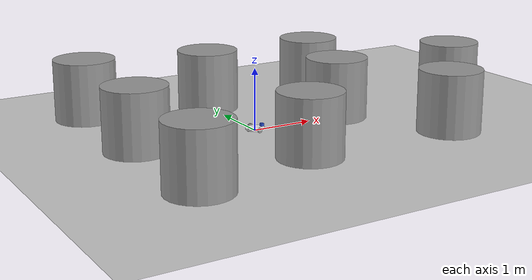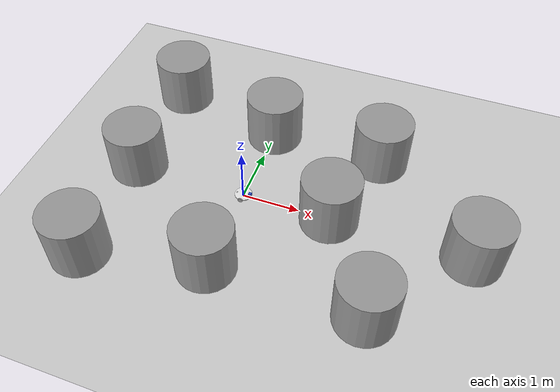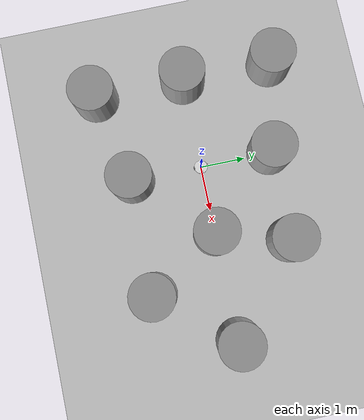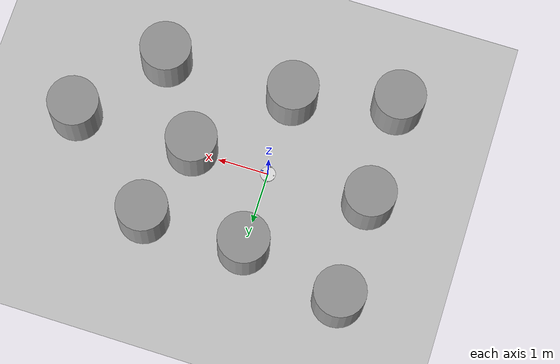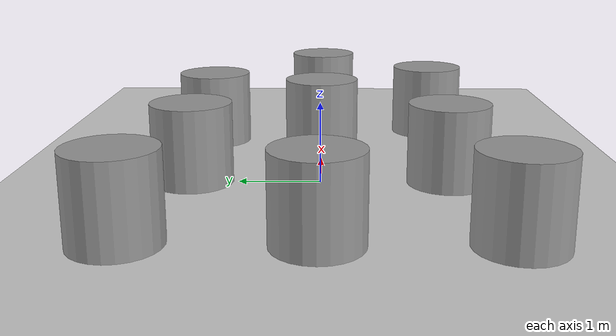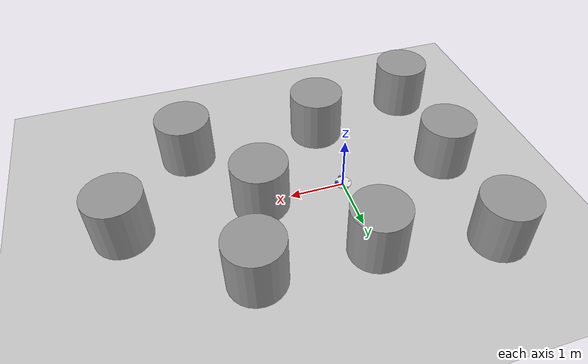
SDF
<sdf version="1.4">
 <world name="default">
  <light name="sun" type="directional">
   <pose>0 0 10 0 -0 0</pose>
   <diffuse>0.8 0.8 0.8 1</diffuse>
   <specular>0.2 0.2 0.2 1</specular>
   <attenuation>
    <range>1000</range>
    <constant>0.9</constant>
    <linear>0.01</linear>
    <quadratic>0.001</quadratic>
   </attenuation>
   <direction>-0.5 0.1 -0.9</direction>
  </light>
  <model name="ground_plane">
   <static>1</static>
   <link name="link">
    <collision name="collision">
     <geometry><plane><normal>0 0 1</normal><size>100 100</size></plane></geometry>
     <surface><friction><ode><mu>100</mu><mu2>50</mu2></ode></friction></surface>
    </collision>
    <visual name="visual">
     <cast_shadows>0</cast_shadows>
     <geometry><plane><normal>0 0 1</normal><size>100 100</size></plane></geometry>
     <material>
      <script><uri>file://media/materials/scripts/gazebo.material</uri><name>Gazebo/Grey</name></script>
     </material>
    </visual>
    <velocity_decay><linear>0</linear><angular>0</angular></velocity_decay>
   </link>
  </model>
  <physics type="ode">
   <max_step_size>0.001</max_step_size>
   <real_time_factor>1</real_time_factor>
   <real_time_update_rate>1000</real_time_update_rate>
   <gravity>0 0 -9.8</gravity>
  </physics>
  <scene><ambient>0.4 0.4 0.4 1</ambient><background>0.7 0.7 0.7 1</background><shadows>1</shadows></scene>
  <spherical_coordinates>
   <surface_model>EARTH_WGS84</surface_model>
   <latitude_deg>0</latitude_deg>
   <longitude_deg>0</longitude_deg>
   <elevation>0</elevation>
   <heading_deg>0</heading_deg>
  </spherical_coordinates>
  <model name="diff_wheeled_robot">
   <link name="base_footprint">
    <inertial>
     <pose>-0.00166664 0 0.0413326 0 -0 0</pose>
     <mass>6.0001</mass>
     <inertia>
      <ixx>0.0304462</ixx>
      <ixy>0</ixy>
      <ixz>0.000191674</ixz>
      <iyy>0.0461545</iyy>
      <iyz>0</iyz>
      <izz>0.0740583</izz>
     </inertia>
    </inertial>
    <collision name="base_footprint_collision_base_link">
     <pose>0 0 0.04 0 -0 0</pose>
     <geometry><cylinder><length>0.02</length><radius>0.15</radius></cylinder></geometry>
    </collision>
    <collision name="base_footprint_collision_caster_back_link">
     <pose>-0.135 9.79355e-14 0.029 0 -0 0</pose>
     <geometry><sphere><radius>0.025</radius></sphere></geometry>
    </collision>
    <collision name="base_footprint_collision_caster_front_link">
     <pose>0.115 9.79355e-14 0.027 0 -0 0</pose>
     <geometry><sphere><radius>0.025</radius></sphere></geometry>
    </collision>
    <visual name="base_footprint_visual"><geometry><box><size>0.001 0.001 0.001</size></box></geometry></visual>
    <visual name="base_footprint_visual_base_link">
     <pose>0 0 0.04 0 -0 0</pose>
     <geometry><cylinder><length>0.02</length><radius>0.15</radius></cylinder></geometry>
     <material><script><name>Gazebo/White</name><uri>__default__</uri></script></material>
    </visual>
    <visual name="base_footprint_visual_caster_back_link">
     <pose>-0.115 9.79355e-14 0.029 0 -0 0</pose>
     <geometry><sphere><radius>0.025</radius></sphere></geometry>
    </visual>
    <visual name="base_footprint_visual_caster_front_link">
     <pose>0.115 9.79355e-14 0.027 0 -0 0</pose>
     <geometry><sphere><radius>0.025</radius></sphere></geometry>
    </visual>
    <visual name="base_footprint_visual_hokuyo_link">
     <pose>0.125 0 0.0725 0 -0 0</pose>
     <geometry><box><size>0.05 0.05 0.05</size></box></geometry>
     <material><script><name>Gazebo/Blue</name><uri>__default__</uri></script></material>
    </visual>
    <velocity_decay><linear>0</linear><angular>0</angular></velocity_decay>
    <velocity_decay><linear>0</linear><angular>0</angular></velocity_decay>
    <velocity_decay><linear>0</linear><angular>0</angular></velocity_decay>
    <velocity_decay><linear>0</linear><angular>0</angular></velocity_decay>
    <velocity_decay><linear>0</linear><angular>0</angular></velocity_decay>
    <sensor name="head_hokuyo_sensor" type="ray">
     <visualize>1</visualize>
     <update_rate>40</update_rate>
     <ray>
      <scan>
       <horizontal>
        <samples>720</samples>
        <resolution>1</resolution>
        <min_angle>-1.5708</min_angle>
        <max_angle>1.5708</max_angle>
       </horizontal>
      </scan>
      <range><min>0.1</min><max>10</max><resolution>0.001</resolution></range>
     </ray>
     <plugin name="gazebo_ros_head_hokuyo_controller" filename="libgazebo_ros_laser.so">
      <topicName>/scan</topicName>
      <frameName>hokuyo_link</frameName>
      <robotNamespace>/</robotNamespace>
     </plugin>
     <pose>0.125 0 0.0725 0 -0 0</pose>
    </sensor>
   </link>
   <link name="front_left_wheel">
    <pose>0 0.15 0.04 0 -0 0</pose>
    <inertial>
     <mass>2.5</mass>
     <inertia>
      <ixx>0.00108333</ixx>
      <ixy>0</ixy>
      <ixz>0</ixz>
      <iyy>0.00108333</iyy>
      <iyz>0</iyz>
      <izz>0.002</izz>
     </inertia>
    </inertial>
    <collision name="front_left_wheel_collision">
     <pose>0 0 0 -1.5708 0 0</pose>
     <geometry><cylinder><length>0.02</length><radius>0.04</radius></cylinder></geometry>
     <surface>
      <contact><ode><kp>1e+07</kp><kd>1</kd></ode></contact>
      <friction><ode><mu>1</mu><mu2>1</mu2><fdir1>1 0 0</fdir1></ode></friction>
     </surface>
    </collision>
    <visual name="front_left_wheel_visual">
     <pose>0 0 0 -1.5708 0 0</pose>
     <geometry><cylinder><length>0.02</length><radius>0.04</radius></cylinder></geometry>
     <material><script><name>Gazebo/Grey</name><uri>__default__</uri></script></material>
    </visual>
    <velocity_decay><linear>0</linear><angular>0</angular></velocity_decay>
   </link>
   <joint name="front_left_wheel_joint" type="revolute">
    <child>front_left_wheel</child>
    <parent>base_footprint</parent>
    <axis><xyz>0 1 0</xyz><limit><lower>-1e+16</lower><upper>1e+16</upper></limit></axis>
   </joint>
   <link name="front_right_wheel">
    <pose>0 -0.15 0.04 0 -0 0</pose>
    <inertial>
     <mass>2.5</mass>
     <inertia>
      <ixx>0.00108333</ixx>
      <ixy>0</ixy>
      <ixz>0</ixz>
      <iyy>0.00108333</iyy>
      <iyz>0</iyz>
      <izz>0.002</izz>
     </inertia>
    </inertial>
    <collision name="front_right_wheel_collision">
     <pose>0 0 0 -1.5708 0 0</pose>
     <geometry><cylinder><length>0.02</length><radius>0.04</radius></cylinder></geometry>
     <surface>
      <contact><ode><kp>1e+07</kp><kd>1</kd></ode></contact>
      <friction><ode><mu>1</mu><mu2>1</mu2><fdir1>1 0 0</fdir1></ode></friction>
     </surface>
    </collision>
    <visual name="front_right_wheel_visual">
     <pose>0 0 0 -1.5708 0 0</pose>
     <geometry><cylinder><length>0.02</length><radius>0.04</radius></cylinder></geometry>
     <material><script><name>Gazebo/Grey</name><uri>__default__</uri></script></material>
    </visual>
    <velocity_decay><linear>0</linear><angular>0</angular></velocity_decay>
   </link>
   <joint name="front_right_wheel_joint" type="revolute">
    <child>front_right_wheel</child>
    <parent>base_footprint</parent>
    <axis><xyz>0 1 0</xyz><limit><lower>-1e+16</lower><upper>1e+16</upper></limit></axis>
   </joint>
   <plugin name="differential_drive_controller_front" filename="libgazebo_ros_diff_drive.so">
    <rosDebugLevel>Debug</rosDebugLevel>
    <publishWheelTF>false</publishWheelTF>
    <publishTf>1</publishTf>
    <publishWheelJointState>true</publishWheelJointState>
    <alwaysOn>true</alwaysOn>
    <updateRate>100.0</updateRate>
    <leftJoint>front_left_wheel_joint</leftJoint>
    <rightJoint>front_right_wheel_joint</rightJoint>
    <wheelSeparation>0.3</wheelSeparation>
    <wheelDiameter>0.08</wheelDiameter>
    <broadcastTF>1</broadcastTF>
    <wheelTorque>100</wheelTorque>
    <wheelAcceleration>1.8</wheelAcceleration>
    <commandTopic>cmd_vel</commandTopic>
    <odometryTopic>odom</odometryTopic>
    <odometryFrame>odom</odometryFrame>
    <odometrySource>world</odometrySource>
    <robotBaseFrame>base_footprint</robotBaseFrame>
    <robotNamespace>/</robotNamespace>
   </plugin>
   <plugin name="joint_state_publisher" filename="libgazebo_ros_joint_state_publisher.so">
    <jointName>front_left_wheel_joint, front_right_wheel_joint</jointName>
    <updateRate>10.0</updateRate>
    <alwaysOn>true</alwaysOn>
    <robotNamespace>/</robotNamespace>
   </plugin>
   <static>0</static>
   <plugin name="novatel_gps_sim" filename="libhector_gazebo_ros_gps.so">
    <alwaysOn>1</alwaysOn>
    <updateRate>10.0</updateRate>
    <bodyName>base_footprint</bodyName>
    <topicName>fix</topicName>
    <velocityTopicName>fix_velocity</velocityTopicName>
    <drift>5.0 5.0 5.0</drift>
    <gaussianNoise>0.1 0.1 0.1</gaussianNoise>
    <velocityDrift>0 0 0</velocityDrift>
    <velocityGaussianNoise>0.1 0.1 0.1</velocityGaussianNoise>
    <robotNamespace>/</robotNamespace>
   </plugin>
   <pose>4.1e-05 -0 1.5e-05 2.11851e-22 -0.02965 -5.5e-05</pose>
  </model>
  <model name="unit_cylinder_1">
   <pose>0 1.56701 0.499998 1e-06 -0 0</pose>
   <link name="link">
    <inertial>
     <mass>1</mass>
     <inertia><ixx>1</ixx><ixy>0</ixy><ixz>0</ixz><iyy>1</iyy><iyz>0</iyz><izz>1</izz></inertia>
    </inertial>
    <collision name="collision">
     <geometry><cylinder><radius>0.5</radius><length>1</length></cylinder></geometry>
    </collision>
    <visual name="visual">
     <geometry><cylinder><radius>0.5</radius><length>1</length></cylinder></geometry>
     <material>
      <script><uri>file://media/materials/scripts/gazebo.material</uri><name>Gazebo/Grey</name></script>
     </material>
    </visual>
    <velocity_decay><linear>0</linear><angular>0</angular></velocity_decay>
   </link>
   <static>0</static>
  </model>
  <model name="unit_cylinder_2">
   <pose>2 1.55881 0.499992 -1e-06 -0 0</pose>
   <link name="link">
    <inertial>
     <mass>1</mass>
     <inertia><ixx>1</ixx><ixy>0</ixy><ixz>0</ixz><iyy>1</iyy><iyz>0</iyz><izz>1</izz></inertia>
    </inertial>
    <collision name="collision">
     <geometry><cylinder><radius>0.5</radius><length>1</length></cylinder></geometry>
    </collision>
    <visual name="visual">
     <geometry><cylinder><radius>0.5</radius><length>1</length></cylinder></geometry>
     <material>
      <script><uri>file://media/materials/scripts/gazebo.material</uri><name>Gazebo/Grey</name></script>
     </material>
    </visual>
    <velocity_decay><linear>0</linear><angular>0</angular></velocity_decay>
   </link>
   <static>0</static>
  </model>
  <model name="unit_cylinder_3">
   <pose>0 -1.56452 0.499998 1e-06 -0 0</pose>
   <link name="link">
    <inertial>
     <mass>1</mass>
     <inertia><ixx>1</ixx><ixy>0</ixy><ixz>0</ixz><iyy>1</iyy><iyz>0</iyz><izz>1</izz></inertia>
    </inertial>
    <collision name="collision">
     <geometry><cylinder><radius>0.5</radius><length>1</length></cylinder></geometry>
    </collision>
    <visual name="visual">
     <geometry><cylinder><radius>0.5</radius><length>1</length></cylinder></geometry>
     <material>
      <script><uri>file://media/materials/scripts/gazebo.material</uri><name>Gazebo/Grey</name></script>
     </material>
    </visual>
    <velocity_decay><linear>0</linear><angular>0</angular></velocity_decay>
   </link>
   <static>0</static>
  </model>
  <model name="unit_cylinder_4">
   <pose>2.56824 -1.58381 0.499992 -1e-06 -0 0</pose>
   <link name="link">
    <inertial>
     <mass>1</mass>
     <inertia><ixx>1</ixx><ixy>0</ixy><ixz>0</ixz><iyy>1</iyy><iyz>0</iyz><izz>1</izz></inertia>
    </inertial>
    <collision name="collision">
     <geometry><cylinder><radius>0.5</radius><length>1</length></cylinder></geometry>
    </collision>
    <visual name="visual">
     <geometry><cylinder><radius>0.5</radius><length>1</length></cylinder></geometry>
     <material>
      <script><uri>file://media/materials/scripts/gazebo.material</uri><name>Gazebo/Grey</name></script>
     </material>
    </visual>
    <velocity_decay><linear>0</linear><angular>0</angular></velocity_decay>
   </link>
   <static>0</static>
  </model>
  <model name="unit_cylinder_5">
   <pose>-2 -0 0.499998 1e-06 -0 0</pose>
   <link name="link">
    <inertial>
     <mass>1</mass>
     <inertia><ixx>1</ixx><ixy>0</ixy><ixz>0</ixz><iyy>1</iyy><iyz>0</iyz><izz>1</izz></inertia>
    </inertial>
    <collision name="collision">
     <geometry><cylinder><radius>0.5</radius><length>1</length></cylinder></geometry>
    </collision>
    <visual name="visual">
     <geometry><cylinder><radius>0.5</radius><length>1</length></cylinder></geometry>
     <material>
      <script><uri>file://media/materials/scripts/gazebo.material</uri><name>Gazebo/Grey</name></script>
     </material>
    </visual>
    <velocity_decay><linear>0</linear><angular>0</angular></velocity_decay>
   </link>
   <static>0</static>
  </model>
  <model name="unit_cylinder_6">
   <pose>1.5341 0 0.499992 -1e-06 -0 0</pose>
   <link name="link">
    <inertial>
     <mass>1</mass>
     <inertia><ixx>1</ixx><ixy>0</ixy><ixz>0</ixz><iyy>1</iyy><iyz>0</iyz><izz>1</izz></inertia>
    </inertial>
    <collision name="collision">
     <geometry><cylinder><radius>0.5</radius><length>1</length></cylinder></geometry>
    </collision>
    <visual name="visual">
     <geometry><cylinder><radius>0.5</radius><length>1</length></cylinder></geometry>
     <material>
      <script><uri>file://media/materials/scripts/gazebo.material</uri><name>Gazebo/Grey</name></script>
     </material>
    </visual>
    <velocity_decay><linear>0</linear><angular>0</angular></velocity_decay>
   </link>
   <static>0</static>
  </model>
  <model name="unit_cylinder_7">
   <pose>3.89904 -0 0.499998 0 -0 0</pose>
   <link name="link">
    <inertial>
     <mass>1</mass>
     <inertia><ixx>1</ixx><ixy>0</ixy><ixz>0</ixz><iyy>1</iyy><iyz>0</iyz><izz>1</izz></inertia>
    </inertial>
    <collision name="collision">
     <geometry><cylinder><radius>0.5</radius><length>1</length></cylinder></geometry>
    </collision>
    <visual name="visual">
     <geometry><cylinder><radius>0.5</radius><length>1</length></cylinder></geometry>
     <material>
      <script><uri>file://media/materials/scripts/gazebo.material</uri><name>Gazebo/Grey</name></script>
     </material>
    </visual>
    <velocity_decay><linear>0</linear><angular>0</angular></velocity_decay>
   </link>
   <static>0</static>
  </model>
  <model name="unit_cylinder_8">
   <pose>-2 2 0.499992 0 -0 0</pose>
   <link name="link">
    <inertial>
     <mass>1</mass>
     <inertia><ixx>1</ixx><ixy>0</ixy><ixz>0</ixz><iyy>1</iyy><iyz>0</iyz><izz>1</izz></inertia>
    </inertial>
    <collision name="collision">
     <geometry><cylinder><radius>0.5</radius><length>1</length></cylinder></geometry>
    </collision>
    <visual name="visual">
     <geometry><cylinder><radius>0.5</radius><length>1</length></cylinder></geometry>
     <material>
      <script><uri>file://media/materials/scripts/gazebo.material</uri><name>Gazebo/Grey</name></script>
     </material>
    </visual>
    <velocity_decay><linear>0</linear><angular>0</angular></velocity_decay>
   </link>
   <static>0</static>
  </model>
  <model name="unit_cylinder_9">
   <pose>-2 -2 0.499998 0 -0 0</pose>
   <link name="link">
    <inertial>
     <mass>1</mass>
     <inertia><ixx>1</ixx><ixy>0</ixy><ixz>0</ixz><iyy>1</iyy><iyz>0</iyz><izz>1</izz></inertia>
    </inertial>
    <collision name="collision">
     <geometry><cylinder><radius>0.5</radius><length>1</length></cylinder></geometry>
    </collision>
    <visual name="visual">
     <geometry><cylinder><radius>0.5</radius><length>1</length></cylinder></geometry>
     <material>
      <script><uri>file://media/materials/scripts/gazebo.material</uri><name>Gazebo/Grey</name></script>
     </material>
    </visual>
    <velocity_decay><linear>0</linear><angular>0</angular></velocity_decay>
   </link>
   <static>0</static>
  </model>
 </world>
</sdf>
